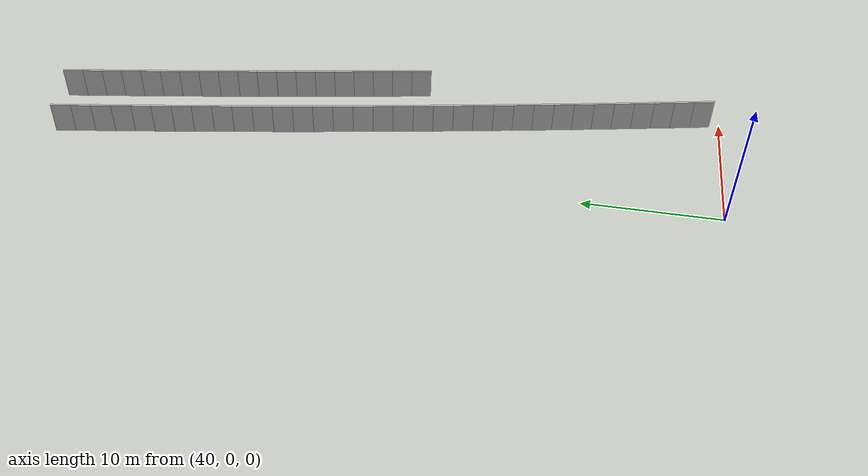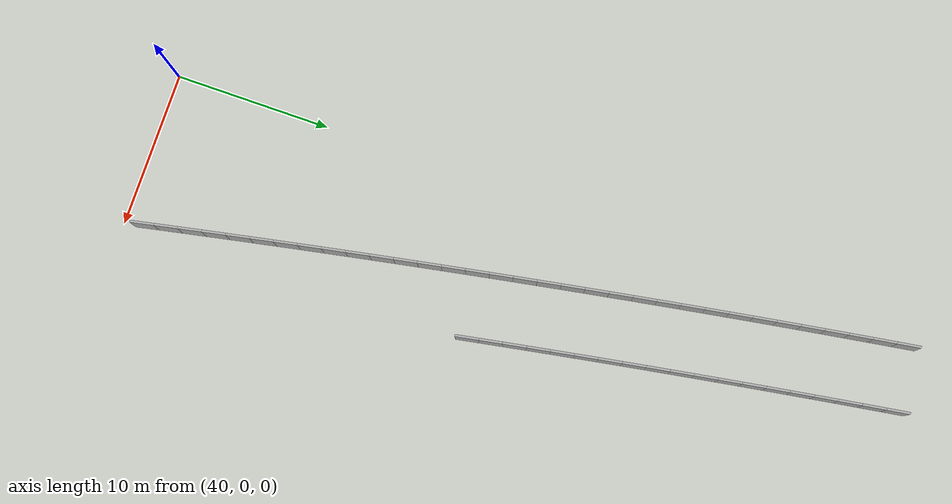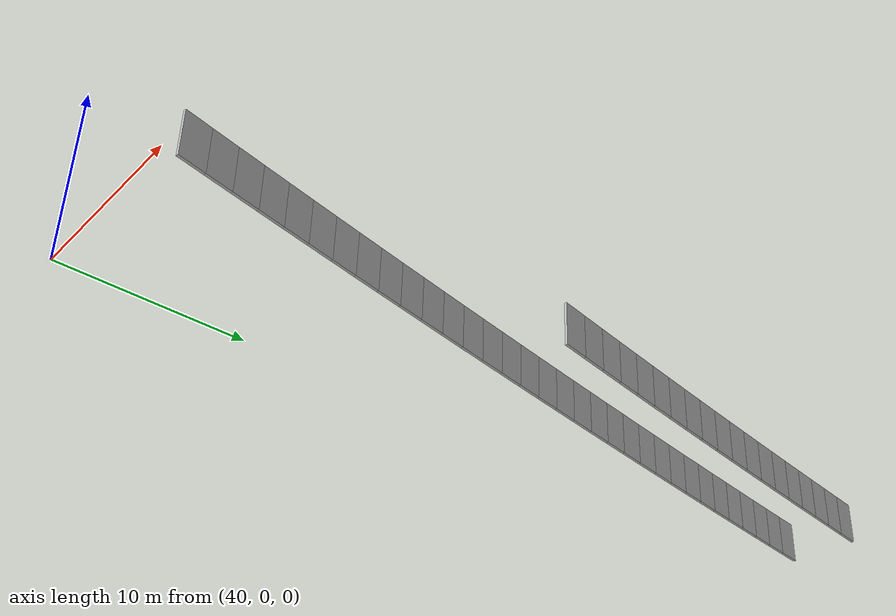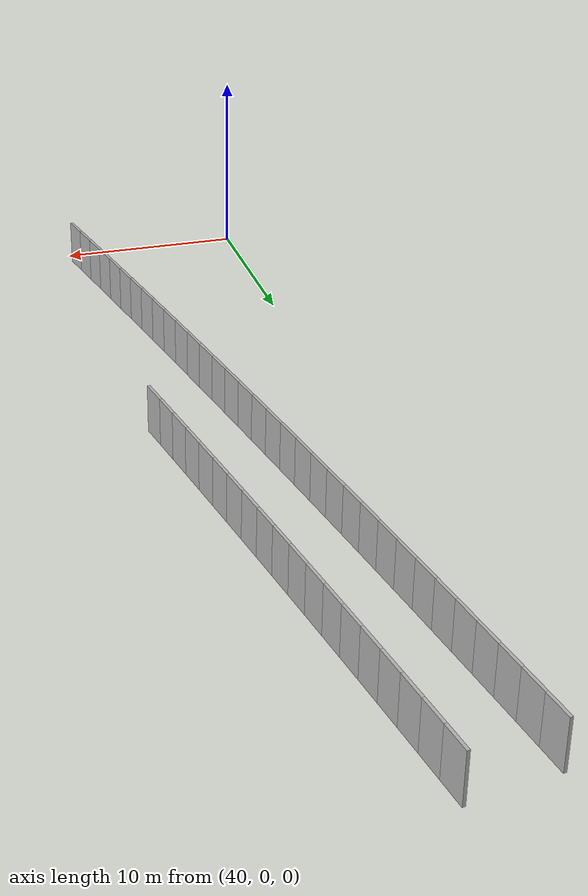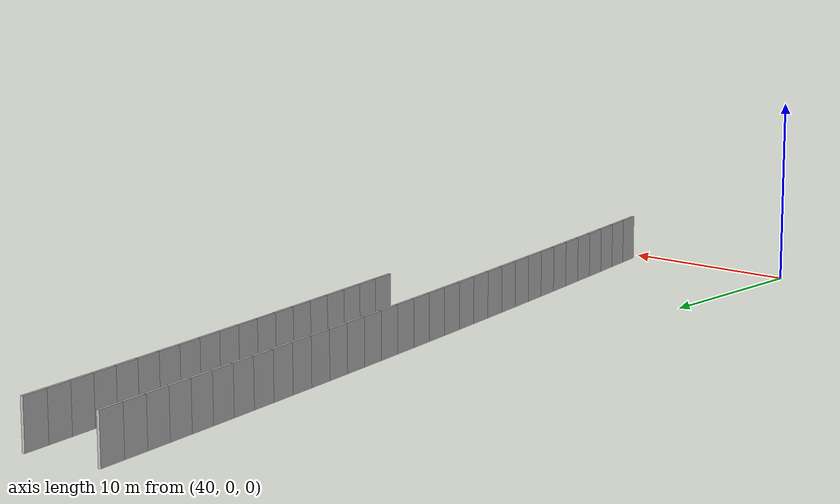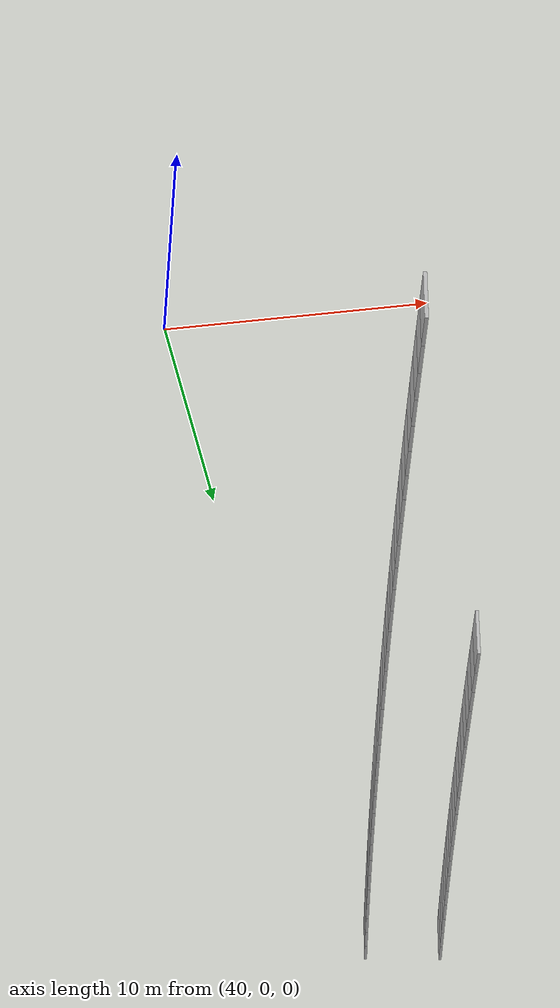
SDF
<?xml version="1.0" ?>
<sdf version="1.6">
  <model name="sps_0222">
    <pose frame="">0 0 0 0 -0 0</pose>
    <static>1</static>
    <self_collide>0</self_collide>
    <allow_auto_disable>0</allow_auto_disable>
    <link name="Wall5304">
      <kinematic>0</kinematic>
      <gravity>1</gravity>
      <self_collide>0</self_collide>
      <collision name="collision">
        <geometry>
          <box>
            <size>1.4965 0.15 2.5</size>
          </box>
        </geometry>
        <pose frame="">0 0 0 0 -0 0</pose>
      </collision>
      <visual name="visual">
        <geometry>
          <box>
            <size>1.4965 0.15 2.5</size>
          </box>
        </geometry>
        <pose frame="">0 0 0 0 -0 0</pose>
        <cast_shadows>1</cast_shadows>
        <transparency>0.0</transparency>
      </visual>
      <pose frame="">45.339 49.4575 1.25 0 0 -1.41853</pose>
    </link>
    <link name="Wall5305">
      <kinematic>0</kinematic>
      <gravity>1</gravity>
      <self_collide>0</self_collide>
      <collision name="collision">
        <geometry>
          <box>
            <size>1.4965 0.15 2.5</size>
          </box>
        </geometry>
        <pose frame="">0 0 0 0 -0 0</pose>
      </collision>
      <visual name="visual">
        <geometry>
          <box>
            <size>1.4965 0.15 2.5</size>
          </box>
        </geometry>
        <pose frame="">0 0 0 0 -0 0</pose>
        <cast_shadows>1</cast_shadows>
        <transparency>0.0</transparency>
      </visual>
      <pose frame="">45.5672 47.9785 1.25 0 0 -1.41692</pose>
    </link>
    <link name="Wall5306">
      <kinematic>0</kinematic>
      <gravity>1</gravity>
      <self_collide>0</self_collide>
      <collision name="collision">
        <geometry>
          <box>
            <size>1.49664 0.15 2.5</size>
          </box>
        </geometry>
        <pose frame="">0 0 0 0 -0 0</pose>
      </collision>
      <visual name="visual">
        <geometry>
          <box>
            <size>1.49664 0.15 2.5</size>
          </box>
        </geometry>
        <pose frame="">0 0 0 0 -0 0</pose>
        <cast_shadows>1</cast_shadows>
        <transparency>0.0</transparency>
      </visual>
      <pose frame="">45.7978 46.4998 1.25 0 0 -1.41528</pose>
    </link>
    <link name="Wall5307">
      <kinematic>0</kinematic>
      <gravity>1</gravity>
      <self_collide>0</self_collide>
      <collision name="collision">
        <geometry>
          <box>
            <size>1.49644 0.15 2.5</size>
          </box>
        </geometry>
        <pose frame="">0 0 0 0 -0 0</pose>
      </collision>
      <visual name="visual">
        <geometry>
          <box>
            <size>1.49644 0.15 2.5</size>
          </box>
        </geometry>
        <pose frame="">0 0 0 0 -0 0</pose>
        <cast_shadows>1</cast_shadows>
        <transparency>0.0</transparency>
      </visual>
      <pose frame="">46.0307 45.0215 1.25 0 0 -1.41377</pose>
    </link>
    <link name="Wall5308">
      <kinematic>0</kinematic>
      <gravity>1</gravity>
      <self_collide>0</self_collide>
      <collision name="collision">
        <geometry>
          <box>
            <size>1.49657 0.15 2.5</size>
          </box>
        </geometry>
        <pose frame="">0 0 0 0 -0 0</pose>
      </collision>
      <visual name="visual">
        <geometry>
          <box>
            <size>1.49657 0.15 2.5</size>
          </box>
        </geometry>
        <pose frame="">0 0 0 0 -0 0</pose>
        <cast_shadows>1</cast_shadows>
        <transparency>0.0</transparency>
      </visual>
      <pose frame="">46.2659 43.5436 1.25 0 0 -1.41218</pose>
    </link>
    <link name="Wall5309">
      <kinematic>0</kinematic>
      <gravity>1</gravity>
      <self_collide>0</self_collide>
      <collision name="collision">
        <geometry>
          <box>
            <size>1.49638 0.15 2.5</size>
          </box>
        </geometry>
        <pose frame="">0 0 0 0 -0 0</pose>
      </collision>
      <visual name="visual">
        <geometry>
          <box>
            <size>1.49638 0.15 2.5</size>
          </box>
        </geometry>
        <pose frame="">0 0 0 0 -0 0</pose>
        <cast_shadows>1</cast_shadows>
        <transparency>0.0</transparency>
      </visual>
      <pose frame="">46.5033 42.0661 1.25 0 0 -1.41067</pose>
    </link>
    <link name="Wall5310">
      <kinematic>0</kinematic>
      <gravity>1</gravity>
      <self_collide>0</self_collide>
      <collision name="collision">
        <geometry>
          <box>
            <size>1.49653 0.15 2.5</size>
          </box>
        </geometry>
        <pose frame="">0 0 0 0 -0 0</pose>
      </collision>
      <visual name="visual">
        <geometry>
          <box>
            <size>1.49653 0.15 2.5</size>
          </box>
        </geometry>
        <pose frame="">0 0 0 0 -0 0</pose>
        <cast_shadows>1</cast_shadows>
        <transparency>0.0</transparency>
      </visual>
      <pose frame="">46.7432 40.589 1.25 0 0 -1.40903</pose>
    </link>
    <link name="Wall5311">
      <kinematic>0</kinematic>
      <gravity>1</gravity>
      <self_collide>0</self_collide>
      <collision name="collision">
        <geometry>
          <box>
            <size>1.49673 0.15 2.5</size>
          </box>
        </geometry>
        <pose frame="">0 0 0 0 -0 0</pose>
      </collision>
      <visual name="visual">
        <geometry>
          <box>
            <size>1.49673 0.15 2.5</size>
          </box>
        </geometry>
        <pose frame="">0 0 0 0 -0 0</pose>
        <cast_shadows>1</cast_shadows>
        <transparency>0.0</transparency>
      </visual>
      <pose frame="">46.9854 39.1121 1.25 0 0 -1.40744</pose>
    </link>
    <link name="Wall5312">
      <kinematic>0</kinematic>
      <gravity>1</gravity>
      <self_collide>0</self_collide>
      <collision name="collision">
        <geometry>
          <box>
            <size>1.49649 0.15 2.5</size>
          </box>
        </geometry>
        <pose frame="">0 0 0 0 -0 0</pose>
      </collision>
      <visual name="visual">
        <geometry>
          <box>
            <size>1.49649 0.15 2.5</size>
          </box>
        </geometry>
        <pose frame="">0 0 0 0 -0 0</pose>
        <cast_shadows>1</cast_shadows>
        <transparency>0.0</transparency>
      </visual>
      <pose frame="">47.2299 37.6356 1.25 0 0 -1.40593</pose>
    </link>
    <link name="Wall5313">
      <kinematic>0</kinematic>
      <gravity>1</gravity>
      <self_collide>0</self_collide>
      <collision name="collision">
        <geometry>
          <box>
            <size>1.49646 0.15 2.5</size>
          </box>
        </geometry>
        <pose frame="">0 0 0 0 -0 0</pose>
      </collision>
      <visual name="visual">
        <geometry>
          <box>
            <size>1.49646 0.15 2.5</size>
          </box>
        </geometry>
        <pose frame="">0 0 0 0 -0 0</pose>
        <cast_shadows>1</cast_shadows>
        <transparency>0.0</transparency>
      </visual>
      <pose frame="">47.4767 36.1596 1.25 0 0 -1.40431</pose>
    </link>
    <link name="Wall5314">
      <kinematic>0</kinematic>
      <gravity>1</gravity>
      <self_collide>0</self_collide>
      <collision name="collision">
        <geometry>
          <box>
            <size>1.49649 0.15 2.5</size>
          </box>
        </geometry>
        <pose frame="">0 0 0 0 -0 0</pose>
      </collision>
      <visual name="visual">
        <geometry>
          <box>
            <size>1.49649 0.15 2.5</size>
          </box>
        </geometry>
        <pose frame="">0 0 0 0 -0 0</pose>
        <cast_shadows>1</cast_shadows>
        <transparency>0.0</transparency>
      </visual>
      <pose frame="">47.7259 34.684 1.25 0 0 -1.4027</pose>
    </link>
    <link name="Wall5315">
      <kinematic>0</kinematic>
      <gravity>1</gravity>
      <self_collide>0</self_collide>
      <collision name="collision">
        <geometry>
          <box>
            <size>1.49654 0.15 2.5</size>
          </box>
        </geometry>
        <pose frame="">0 0 0 0 -0 0</pose>
      </collision>
      <visual name="visual">
        <geometry>
          <box>
            <size>1.49654 0.15 2.5</size>
          </box>
        </geometry>
        <pose frame="">0 0 0 0 -0 0</pose>
        <cast_shadows>1</cast_shadows>
        <transparency>0.0</transparency>
      </visual>
      <pose frame="">47.9774 33.2088 1.25 0 0 -1.40105</pose>
    </link>
    <link name="Wall5316">
      <kinematic>0</kinematic>
      <gravity>1</gravity>
      <self_collide>0</self_collide>
      <collision name="collision">
        <geometry>
          <box>
            <size>1.49647 0.15 2.5</size>
          </box>
        </geometry>
        <pose frame="">0 0 0 0 -0 0</pose>
      </collision>
      <visual name="visual">
        <geometry>
          <box>
            <size>1.49647 0.15 2.5</size>
          </box>
        </geometry>
        <pose frame="">0 0 0 0 -0 0</pose>
        <cast_shadows>1</cast_shadows>
        <transparency>0.0</transparency>
      </visual>
      <pose frame="">48.2314 31.734 1.25 0 0 -1.39943</pose>
    </link>
    <link name="Wall5317">
      <kinematic>0</kinematic>
      <gravity>1</gravity>
      <self_collide>0</self_collide>
      <collision name="collision">
        <geometry>
          <box>
            <size>1.49655 0.15 2.5</size>
          </box>
        </geometry>
        <pose frame="">0 0 0 0 -0 0</pose>
      </collision>
      <visual name="visual">
        <geometry>
          <box>
            <size>1.49655 0.15 2.5</size>
          </box>
        </geometry>
        <pose frame="">0 0 0 0 -0 0</pose>
        <cast_shadows>1</cast_shadows>
        <transparency>0.0</transparency>
      </visual>
      <pose frame="">48.4878 30.2596 1.25 0 0 -1.39791</pose>
    </link>
    <link name="Wall5318">
      <kinematic>0</kinematic>
      <gravity>1</gravity>
      <self_collide>0</self_collide>
      <collision name="collision">
        <geometry>
          <box>
            <size>1.49647 0.15 2.5</size>
          </box>
        </geometry>
        <pose frame="">0 0 0 0 -0 0</pose>
      </collision>
      <visual name="visual">
        <geometry>
          <box>
            <size>1.49647 0.15 2.5</size>
          </box>
        </geometry>
        <pose frame="">0 0 0 0 -0 0</pose>
        <cast_shadows>1</cast_shadows>
        <transparency>0.0</transparency>
      </visual>
      <pose frame="">48.7464 28.7856 1.25 0 0 -1.39633</pose>
    </link>
    <link name="Wall5319">
      <kinematic>0</kinematic>
      <gravity>1</gravity>
      <self_collide>0</self_collide>
      <collision name="collision">
        <geometry>
          <box>
            <size>1.49657 0.15 2.5</size>
          </box>
        </geometry>
        <pose frame="">0 0 0 0 -0 0</pose>
      </collision>
      <visual name="visual">
        <geometry>
          <box>
            <size>1.49657 0.15 2.5</size>
          </box>
        </geometry>
        <pose frame="">0 0 0 0 -0 0</pose>
        <cast_shadows>1</cast_shadows>
        <transparency>0.0</transparency>
      </visual>
      <pose frame="">49.0073 27.312 1.25 0 0 -1.39481</pose>
    </link>
    <link name="Wall5320">
      <kinematic>0</kinematic>
      <gravity>1</gravity>
      <self_collide>0</self_collide>
      <collision name="collision">
        <geometry>
          <box>
            <size>1.4965 0.15 2.5</size>
          </box>
        </geometry>
        <pose frame="">0 0 0 0 -0 0</pose>
      </collision>
      <visual name="visual">
        <geometry>
          <box>
            <size>1.4965 0.15 2.5</size>
          </box>
        </geometry>
        <pose frame="">0 0 0 0 -0 0</pose>
        <cast_shadows>1</cast_shadows>
        <transparency>0.0</transparency>
      </visual>
      <pose frame="">49.2705 25.8388 1.25 0 0 -1.39318</pose>
    </link>
    <link name="Wall5321">
      <kinematic>0</kinematic>
      <gravity>1</gravity>
      <self_collide>0</self_collide>
      <collision name="collision">
        <geometry>
          <box>
            <size>1.49653 0.15 2.5</size>
          </box>
        </geometry>
        <pose frame="">0 0 0 0 -0 0</pose>
      </collision>
      <visual name="visual">
        <geometry>
          <box>
            <size>1.49653 0.15 2.5</size>
          </box>
        </geometry>
        <pose frame="">0 0 0 0 -0 0</pose>
        <cast_shadows>1</cast_shadows>
        <transparency>0.0</transparency>
      </visual>
      <pose frame="">49.536 24.366 1.25 0 0 -1.39169</pose>
    </link>
    <link name="Wall5322">
      <kinematic>0</kinematic>
      <gravity>1</gravity>
      <self_collide>0</self_collide>
      <collision name="collision">
        <geometry>
          <box>
            <size>1.49642 0.15 2.5</size>
          </box>
        </geometry>
        <pose frame="">0 0 0 0 -0 0</pose>
      </collision>
      <visual name="visual">
        <geometry>
          <box>
            <size>1.49642 0.15 2.5</size>
          </box>
        </geometry>
        <pose frame="">0 0 0 0 -0 0</pose>
        <cast_shadows>1</cast_shadows>
        <transparency>0.0</transparency>
      </visual>
      <pose frame="">49.8038 22.8937 1.25 0 0 -1.39006</pose>
    </link>
    <link name="Wall7100">
      <kinematic>0</kinematic>
      <gravity>1</gravity>
      <self_collide>0</self_collide>
      <collision name="collision">
        <geometry>
          <box>
            <size>1.50299 0.15 2.5</size>
          </box>
        </geometry>
        <pose frame="">0 0 0 0 -0 0</pose>
      </collision>
      <visual name="visual">
        <geometry>
          <box>
            <size>1.50299 0.15 2.5</size>
          </box>
        </geometry>
        <pose frame="">0 0 0 0 -0 0</pose>
        <cast_shadows>1</cast_shadows>
        <transparency>0.0</transparency>
      </visual>
      <pose frame="">41.2476 48.8293 1.25 0 0 -1.41849</pose>
    </link>
    <link name="Wall7101">
      <kinematic>0</kinematic>
      <gravity>1</gravity>
      <self_collide>0</self_collide>
      <collision name="collision">
        <geometry>
          <box>
            <size>1.503 0.15 2.5</size>
          </box>
        </geometry>
        <pose frame="">0 0 0 0 -0 0</pose>
      </collision>
      <visual name="visual">
        <geometry>
          <box>
            <size>1.503 0.15 2.5</size>
          </box>
        </geometry>
        <pose frame="">0 0 0 0 -0 0</pose>
        <cast_shadows>1</cast_shadows>
        <transparency>0.0</transparency>
      </visual>
      <pose frame="">41.4769 47.3439 1.25 0 0 -1.41689</pose>
    </link>
    <link name="Wall7102">
      <kinematic>0</kinematic>
      <gravity>1</gravity>
      <self_collide>0</self_collide>
      <collision name="collision">
        <geometry>
          <box>
            <size>1.50309 0.15 2.5</size>
          </box>
        </geometry>
        <pose frame="">0 0 0 0 -0 0</pose>
      </collision>
      <visual name="visual">
        <geometry>
          <box>
            <size>1.50309 0.15 2.5</size>
          </box>
        </geometry>
        <pose frame="">0 0 0 0 -0 0</pose>
        <cast_shadows>1</cast_shadows>
        <transparency>0.0</transparency>
      </visual>
      <pose frame="">41.7084 45.8588 1.25 0 0 -1.41542</pose>
    </link>
    <link name="Wall7103">
      <kinematic>0</kinematic>
      <gravity>1</gravity>
      <self_collide>0</self_collide>
      <collision name="collision">
        <geometry>
          <box>
            <size>1.5031 0.15 2.5</size>
          </box>
        </geometry>
        <pose frame="">0 0 0 0 -0 0</pose>
      </collision>
      <visual name="visual">
        <geometry>
          <box>
            <size>1.5031 0.15 2.5</size>
          </box>
        </geometry>
        <pose frame="">0 0 0 0 -0 0</pose>
        <cast_shadows>1</cast_shadows>
        <transparency>0.0</transparency>
      </visual>
      <pose frame="">41.9422 44.374 1.25 0 0 -1.41382</pose>
    </link>
    <link name="Wall7104">
      <kinematic>0</kinematic>
      <gravity>1</gravity>
      <self_collide>0</self_collide>
      <collision name="collision">
        <geometry>
          <box>
            <size>1.50306 0.15 2.5</size>
          </box>
        </geometry>
        <pose frame="">0 0 0 0 -0 0</pose>
      </collision>
      <visual name="visual">
        <geometry>
          <box>
            <size>1.50306 0.15 2.5</size>
          </box>
        </geometry>
        <pose frame="">0 0 0 0 -0 0</pose>
        <cast_shadows>1</cast_shadows>
        <transparency>0.0</transparency>
      </visual>
      <pose frame="">42.1784 42.8896 1.25 0 0 -1.41217</pose>
    </link>
    <link name="Wall7105">
      <kinematic>0</kinematic>
      <gravity>1</gravity>
      <self_collide>0</self_collide>
      <collision name="collision">
        <geometry>
          <box>
            <size>1.50301 0.15 2.5</size>
          </box>
        </geometry>
        <pose frame="">0 0 0 0 -0 0</pose>
      </collision>
      <visual name="visual">
        <geometry>
          <box>
            <size>1.50301 0.15 2.5</size>
          </box>
        </geometry>
        <pose frame="">0 0 0 0 -0 0</pose>
        <cast_shadows>1</cast_shadows>
        <transparency>0.0</transparency>
      </visual>
      <pose frame="">42.417 41.4056 1.25 0 0 -1.4106</pose>
    </link>
    <link name="Wall7106">
      <kinematic>0</kinematic>
      <gravity>1</gravity>
      <self_collide>0</self_collide>
      <collision name="collision">
        <geometry>
          <box>
            <size>1.50325 0.15 2.5</size>
          </box>
        </geometry>
        <pose frame="">0 0 0 0 -0 0</pose>
      </collision>
      <visual name="visual">
        <geometry>
          <box>
            <size>1.50325 0.15 2.5</size>
          </box>
        </geometry>
        <pose frame="">0 0 0 0 -0 0</pose>
        <cast_shadows>1</cast_shadows>
        <transparency>0.0</transparency>
      </visual>
      <pose frame="">42.6578 39.9219 1.25 0 0 -1.40911</pose>
    </link>
    <link name="Wall7107">
      <kinematic>0</kinematic>
      <gravity>1</gravity>
      <self_collide>0</self_collide>
      <collision name="collision">
        <geometry>
          <box>
            <size>1.50301 0.15 2.5</size>
          </box>
        </geometry>
        <pose frame="">0 0 0 0 -0 0</pose>
      </collision>
      <visual name="visual">
        <geometry>
          <box>
            <size>1.50301 0.15 2.5</size>
          </box>
        </geometry>
        <pose frame="">0 0 0 0 -0 0</pose>
        <cast_shadows>1</cast_shadows>
        <transparency>0.0</transparency>
      </visual>
      <pose frame="">42.9011 38.4386 1.25 0 0 -1.40731</pose>
    </link>
    <link name="Wall7108">
      <kinematic>0</kinematic>
      <gravity>1</gravity>
      <self_collide>0</self_collide>
      <collision name="collision">
        <geometry>
          <box>
            <size>1.50315 0.15 2.5</size>
          </box>
        </geometry>
        <pose frame="">0 0 0 0 -0 0</pose>
      </collision>
      <visual name="visual">
        <geometry>
          <box>
            <size>1.50315 0.15 2.5</size>
          </box>
        </geometry>
        <pose frame="">0 0 0 0 -0 0</pose>
        <cast_shadows>1</cast_shadows>
        <transparency>0.0</transparency>
      </visual>
      <pose frame="">43.1468 36.9557 1.25 0 0 -1.40601</pose>
    </link>
    <link name="Wall7109">
      <kinematic>0</kinematic>
      <gravity>1</gravity>
      <self_collide>0</self_collide>
      <collision name="collision">
        <geometry>
          <box>
            <size>1.50322 0.15 2.5</size>
          </box>
        </geometry>
        <pose frame="">0 0 0 0 -0 0</pose>
      </collision>
      <visual name="visual">
        <geometry>
          <box>
            <size>1.50322 0.15 2.5</size>
          </box>
        </geometry>
        <pose frame="">0 0 0 0 -0 0</pose>
        <cast_shadows>1</cast_shadows>
        <transparency>0.0</transparency>
      </visual>
      <pose frame="">43.3946 35.4731 1.25 0 0 -1.40425</pose>
    </link>
    <link name="Wall7110">
      <kinematic>0</kinematic>
      <gravity>1</gravity>
      <self_collide>0</self_collide>
      <collision name="collision">
        <geometry>
          <box>
            <size>1.50302 0.15 2.5</size>
          </box>
        </geometry>
        <pose frame="">0 0 0 0 -0 0</pose>
      </collision>
      <visual name="visual">
        <geometry>
          <box>
            <size>1.50302 0.15 2.5</size>
          </box>
        </geometry>
        <pose frame="">0 0 0 0 -0 0</pose>
        <cast_shadows>1</cast_shadows>
        <transparency>0.0</transparency>
      </visual>
      <pose frame="">43.645 33.991 1.25 0 0 -1.40262</pose>
    </link>
    <link name="Wall7111">
      <kinematic>0</kinematic>
      <gravity>1</gravity>
      <self_collide>0</self_collide>
      <collision name="collision">
        <geometry>
          <box>
            <size>1.50293 0.15 2.5</size>
          </box>
        </geometry>
        <pose frame="">0 0 0 0 -0 0</pose>
      </collision>
      <visual name="visual">
        <geometry>
          <box>
            <size>1.50293 0.15 2.5</size>
          </box>
        </geometry>
        <pose frame="">0 0 0 0 -0 0</pose>
        <cast_shadows>1</cast_shadows>
        <transparency>0.0</transparency>
      </visual>
      <pose frame="">43.8976 32.5094 1.25 0 0 -1.40125</pose>
    </link>
    <link name="Wall7112">
      <kinematic>0</kinematic>
      <gravity>1</gravity>
      <self_collide>0</self_collide>
      <collision name="collision">
        <geometry>
          <box>
            <size>1.5032 0.15 2.5</size>
          </box>
        </geometry>
        <pose frame="">0 0 0 0 -0 0</pose>
      </collision>
      <visual name="visual">
        <geometry>
          <box>
            <size>1.5032 0.15 2.5</size>
          </box>
        </geometry>
        <pose frame="">0 0 0 0 -0 0</pose>
        <cast_shadows>1</cast_shadows>
        <transparency>0.0</transparency>
      </visual>
      <pose frame="">44.1525 31.0281 1.25 0 0 -1.39951</pose>
    </link>
    <link name="Wall7113">
      <kinematic>0</kinematic>
      <gravity>1</gravity>
      <self_collide>0</self_collide>
      <collision name="collision">
        <geometry>
          <box>
            <size>1.50301 0.15 2.5</size>
          </box>
        </geometry>
        <pose frame="">0 0 0 0 -0 0</pose>
      </collision>
      <visual name="visual">
        <geometry>
          <box>
            <size>1.50301 0.15 2.5</size>
          </box>
        </geometry>
        <pose frame="">0 0 0 0 -0 0</pose>
        <cast_shadows>1</cast_shadows>
        <transparency>0.0</transparency>
      </visual>
      <pose frame="">44.41 29.5472 1.25 0 0 -1.39788</pose>
    </link>
    <link name="Wall7114">
      <kinematic>0</kinematic>
      <gravity>1</gravity>
      <self_collide>0</self_collide>
      <collision name="collision">
        <geometry>
          <box>
            <size>1.50302 0.15 2.5</size>
          </box>
        </geometry>
        <pose frame="">0 0 0 0 -0 0</pose>
      </collision>
      <visual name="visual">
        <geometry>
          <box>
            <size>1.50302 0.15 2.5</size>
          </box>
        </geometry>
        <pose frame="">0 0 0 0 -0 0</pose>
        <cast_shadows>1</cast_shadows>
        <transparency>0.0</transparency>
      </visual>
      <pose frame="">44.6697 28.0668 1.25 0 0 -1.39639</pose>
    </link>
    <link name="Wall7115">
      <kinematic>0</kinematic>
      <gravity>1</gravity>
      <self_collide>0</self_collide>
      <collision name="collision">
        <geometry>
          <box>
            <size>1.50323 0.15 2.5</size>
          </box>
        </geometry>
        <pose frame="">0 0 0 0 -0 0</pose>
      </collision>
      <visual name="visual">
        <geometry>
          <box>
            <size>1.50323 0.15 2.5</size>
          </box>
        </geometry>
        <pose frame="">0 0 0 0 -0 0</pose>
        <cast_shadows>1</cast_shadows>
        <transparency>0.0</transparency>
      </visual>
      <pose frame="">44.9318 26.5867 1.25 0 0 -1.39469</pose>
    </link>
    <link name="Wall7116">
      <kinematic>0</kinematic>
      <gravity>1</gravity>
      <self_collide>0</self_collide>
      <collision name="collision">
        <geometry>
          <box>
            <size>1.50309 0.15 2.5</size>
          </box>
        </geometry>
        <pose frame="">0 0 0 0 -0 0</pose>
      </collision>
      <visual name="visual">
        <geometry>
          <box>
            <size>1.50309 0.15 2.5</size>
          </box>
        </geometry>
        <pose frame="">0 0 0 0 -0 0</pose>
        <cast_shadows>1</cast_shadows>
        <transparency>0.0</transparency>
      </visual>
      <pose frame="">45.1963 25.107 1.25 0 0 -1.39314</pose>
    </link>
    <link name="Wall7117">
      <kinematic>0</kinematic>
      <gravity>1</gravity>
      <self_collide>0</self_collide>
      <collision name="collision">
        <geometry>
          <box>
            <size>1.50264 0.15 2.5</size>
          </box>
        </geometry>
        <pose frame="">0 0 0 0 -0 0</pose>
      </collision>
      <visual name="visual">
        <geometry>
          <box>
            <size>1.50264 0.15 2.5</size>
          </box>
        </geometry>
        <pose frame="">0 0 0 0 -0 0</pose>
        <cast_shadows>1</cast_shadows>
        <transparency>0.0</transparency>
      </visual>
      <pose frame="">45.463 23.628 1.25 0 0 -1.3916</pose>
    </link>
    <link name="Wall7118">
      <kinematic>0</kinematic>
      <gravity>1</gravity>
      <self_collide>0</self_collide>
      <collision name="collision">
        <geometry>
          <box>
            <size>1.50305 0.15 2.5</size>
          </box>
        </geometry>
        <pose frame="">0 0 0 0 -0 0</pose>
      </collision>
      <visual name="visual">
        <geometry>
          <box>
            <size>1.50305 0.15 2.5</size>
          </box>
        </geometry>
        <pose frame="">0 0 0 0 -0 0</pose>
        <cast_shadows>1</cast_shadows>
        <transparency>0.0</transparency>
      </visual>
      <pose frame="">45.732 22.1494 1.25 0 0 -1.39009</pose>
    </link>
    <link name="Wall7119">
      <kinematic>0</kinematic>
      <gravity>1</gravity>
      <self_collide>0</self_collide>
      <collision name="collision">
        <geometry>
          <box>
            <size>1.50314 0.15 2.5</size>
          </box>
        </geometry>
        <pose frame="">0 0 0 0 -0 0</pose>
      </collision>
      <visual name="visual">
        <geometry>
          <box>
            <size>1.50314 0.15 2.5</size>
          </box>
        </geometry>
        <pose frame="">0 0 0 0 -0 0</pose>
        <cast_shadows>1</cast_shadows>
        <transparency>0.0</transparency>
      </visual>
      <pose frame="">46.0033 20.671 1.25 0 0 -1.3884</pose>
    </link>
    <link name="Wall7120">
      <kinematic>0</kinematic>
      <gravity>1</gravity>
      <self_collide>0</self_collide>
      <collision name="collision">
        <geometry>
          <box>
            <size>1.50315 0.15 2.5</size>
          </box>
        </geometry>
        <pose frame="">0 0 0 0 -0 0</pose>
      </collision>
      <visual name="visual">
        <geometry>
          <box>
            <size>1.50315 0.15 2.5</size>
          </box>
        </geometry>
        <pose frame="">0 0 0 0 -0 0</pose>
        <cast_shadows>1</cast_shadows>
        <transparency>0.0</transparency>
      </visual>
      <pose frame="">46.2772 19.193 1.25 0 0 -1.38684</pose>
    </link>
    <link name="Wall7121">
      <kinematic>0</kinematic>
      <gravity>1</gravity>
      <self_collide>0</self_collide>
      <collision name="collision">
        <geometry>
          <box>
            <size>1.50302 0.15 2.5</size>
          </box>
        </geometry>
        <pose frame="">0 0 0 0 -0 0</pose>
      </collision>
      <visual name="visual">
        <geometry>
          <box>
            <size>1.50302 0.15 2.5</size>
          </box>
        </geometry>
        <pose frame="">0 0 0 0 -0 0</pose>
        <cast_shadows>1</cast_shadows>
        <transparency>0.0</transparency>
      </visual>
      <pose frame="">46.5532 17.7155 1.25 0 0 -1.38529</pose>
    </link>
    <link name="Wall7122">
      <kinematic>0</kinematic>
      <gravity>1</gravity>
      <self_collide>0</self_collide>
      <collision name="collision">
        <geometry>
          <box>
            <size>1.50304 0.15 2.5</size>
          </box>
        </geometry>
        <pose frame="">0 0 0 0 -0 0</pose>
      </collision>
      <visual name="visual">
        <geometry>
          <box>
            <size>1.50304 0.15 2.5</size>
          </box>
        </geometry>
        <pose frame="">0 0 0 0 -0 0</pose>
        <cast_shadows>1</cast_shadows>
        <transparency>0.0</transparency>
      </visual>
      <pose frame="">46.8317 16.2385 1.25 0 0 -1.38368</pose>
    </link>
    <link name="Wall7123">
      <kinematic>0</kinematic>
      <gravity>1</gravity>
      <self_collide>0</self_collide>
      <collision name="collision">
        <geometry>
          <box>
            <size>1.50307 0.15 2.5</size>
          </box>
        </geometry>
        <pose frame="">0 0 0 0 -0 0</pose>
      </collision>
      <visual name="visual">
        <geometry>
          <box>
            <size>1.50307 0.15 2.5</size>
          </box>
        </geometry>
        <pose frame="">0 0 0 0 -0 0</pose>
        <cast_shadows>1</cast_shadows>
        <transparency>0.0</transparency>
      </visual>
      <pose frame="">47.1124 14.7619 1.25 0 0 -1.38207</pose>
    </link>
    <link name="Wall7124">
      <kinematic>0</kinematic>
      <gravity>1</gravity>
      <self_collide>0</self_collide>
      <collision name="collision">
        <geometry>
          <box>
            <size>1.50313 0.15 2.5</size>
          </box>
        </geometry>
        <pose frame="">0 0 0 0 -0 0</pose>
      </collision>
      <visual name="visual">
        <geometry>
          <box>
            <size>1.50313 0.15 2.5</size>
          </box>
        </geometry>
        <pose frame="">0 0 0 0 -0 0</pose>
        <cast_shadows>1</cast_shadows>
        <transparency>0.0</transparency>
      </visual>
      <pose frame="">47.3956 13.2857 1.25 0 0 -1.38055</pose>
    </link>
    <link name="Wall7125">
      <kinematic>0</kinematic>
      <gravity>1</gravity>
      <self_collide>0</self_collide>
      <collision name="collision">
        <geometry>
          <box>
            <size>1.50315 0.15 2.5</size>
          </box>
        </geometry>
        <pose frame="">0 0 0 0 -0 0</pose>
      </collision>
      <visual name="visual">
        <geometry>
          <box>
            <size>1.50315 0.15 2.5</size>
          </box>
        </geometry>
        <pose frame="">0 0 0 0 -0 0</pose>
        <cast_shadows>1</cast_shadows>
        <transparency>0.0</transparency>
      </visual>
      <pose frame="">47.681 11.8099 1.25 0 0 -1.37898</pose>
    </link>
    <link name="Wall7126">
      <kinematic>0</kinematic>
      <gravity>1</gravity>
      <self_collide>0</self_collide>
      <collision name="collision">
        <geometry>
          <box>
            <size>1.50302 0.15 2.5</size>
          </box>
        </geometry>
        <pose frame="">0 0 0 0 -0 0</pose>
      </collision>
      <visual name="visual">
        <geometry>
          <box>
            <size>1.50302 0.15 2.5</size>
          </box>
        </geometry>
        <pose frame="">0 0 0 0 -0 0</pose>
        <cast_shadows>1</cast_shadows>
        <transparency>0.0</transparency>
      </visual>
      <pose frame="">47.9687 10.3346 1.25 0 0 -1.37731</pose>
    </link>
    <link name="Wall7127">
      <kinematic>0</kinematic>
      <gravity>1</gravity>
      <self_collide>0</self_collide>
      <collision name="collision">
        <geometry>
          <box>
            <size>1.50313 0.15 2.5</size>
          </box>
        </geometry>
        <pose frame="">0 0 0 0 -0 0</pose>
      </collision>
      <visual name="visual">
        <geometry>
          <box>
            <size>1.50313 0.15 2.5</size>
          </box>
        </geometry>
        <pose frame="">0 0 0 0 -0 0</pose>
        <cast_shadows>1</cast_shadows>
        <transparency>0.0</transparency>
      </visual>
      <pose frame="">48.259 8.85982 1.25 0 0 -1.37567</pose>
    </link>
    <link name="Wall7128">
      <kinematic>0</kinematic>
      <gravity>1</gravity>
      <self_collide>0</self_collide>
      <collision name="collision">
        <geometry>
          <box>
            <size>1.50319 0.15 2.5</size>
          </box>
        </geometry>
        <pose frame="">0 0 0 0 -0 0</pose>
      </collision>
      <visual name="visual">
        <geometry>
          <box>
            <size>1.50319 0.15 2.5</size>
          </box>
        </geometry>
        <pose frame="">0 0 0 0 -0 0</pose>
        <cast_shadows>1</cast_shadows>
        <transparency>0.0</transparency>
      </visual>
      <pose frame="">48.5515 7.38539 1.25 0 0 -1.37423</pose>
    </link>
    <link name="Wall7129">
      <kinematic>0</kinematic>
      <gravity>1</gravity>
      <self_collide>0</self_collide>
      <collision name="collision">
        <geometry>
          <box>
            <size>1.50301 0.15 2.5</size>
          </box>
        </geometry>
        <pose frame="">0 0 0 0 -0 0</pose>
      </collision>
      <visual name="visual">
        <geometry>
          <box>
            <size>1.50301 0.15 2.5</size>
          </box>
        </geometry>
        <pose frame="">0 0 0 0 -0 0</pose>
        <cast_shadows>1</cast_shadows>
        <transparency>0.0</transparency>
      </visual>
      <pose frame="">48.8463 5.91148 1.25 0 0 -1.37255</pose>
    </link>
    <link name="Wall7130">
      <kinematic>0</kinematic>
      <gravity>1</gravity>
      <self_collide>0</self_collide>
      <collision name="collision">
        <geometry>
          <box>
            <size>1.50307 0.15 2.5</size>
          </box>
        </geometry>
        <pose frame="">0 0 0 0 -0 0</pose>
      </collision>
      <visual name="visual">
        <geometry>
          <box>
            <size>1.50307 0.15 2.5</size>
          </box>
        </geometry>
        <pose frame="">0 0 0 0 -0 0</pose>
        <cast_shadows>1</cast_shadows>
        <transparency>0.0</transparency>
      </visual>
      <pose frame="">49.1434 4.43809 1.25 0 0 -1.37111</pose>
    </link>
    <link name="Wall7131">
      <kinematic>0</kinematic>
      <gravity>1</gravity>
      <self_collide>0</self_collide>
      <collision name="collision">
        <geometry>
          <box>
            <size>1.50296 0.15 2.5</size>
          </box>
        </geometry>
        <pose frame="">0 0 0 0 -0 0</pose>
      </collision>
      <visual name="visual">
        <geometry>
          <box>
            <size>1.50296 0.15 2.5</size>
          </box>
        </geometry>
        <pose frame="">0 0 0 0 -0 0</pose>
        <cast_shadows>1</cast_shadows>
        <transparency>0.0</transparency>
      </visual>
      <pose frame="">49.4427 2.96519 1.25 0 0 -1.36943</pose>
    </link>
    <link name="Wall7132">
      <kinematic>0</kinematic>
      <gravity>1</gravity>
      <self_collide>0</self_collide>
      <collision name="collision">
        <geometry>
          <box>
            <size>1.50309 0.15 2.5</size>
          </box>
        </geometry>
        <pose frame="">0 0 0 0 -0 0</pose>
      </collision>
      <visual name="visual">
        <geometry>
          <box>
            <size>1.50309 0.15 2.5</size>
          </box>
        </geometry>
        <pose frame="">0 0 0 0 -0 0</pose>
        <cast_shadows>1</cast_shadows>
        <transparency>0.0</transparency>
      </visual>
      <pose frame="">49.7446 1.49278 1.25 0 0 -1.36779</pose>
    </link>
  </model>
</sdf>
